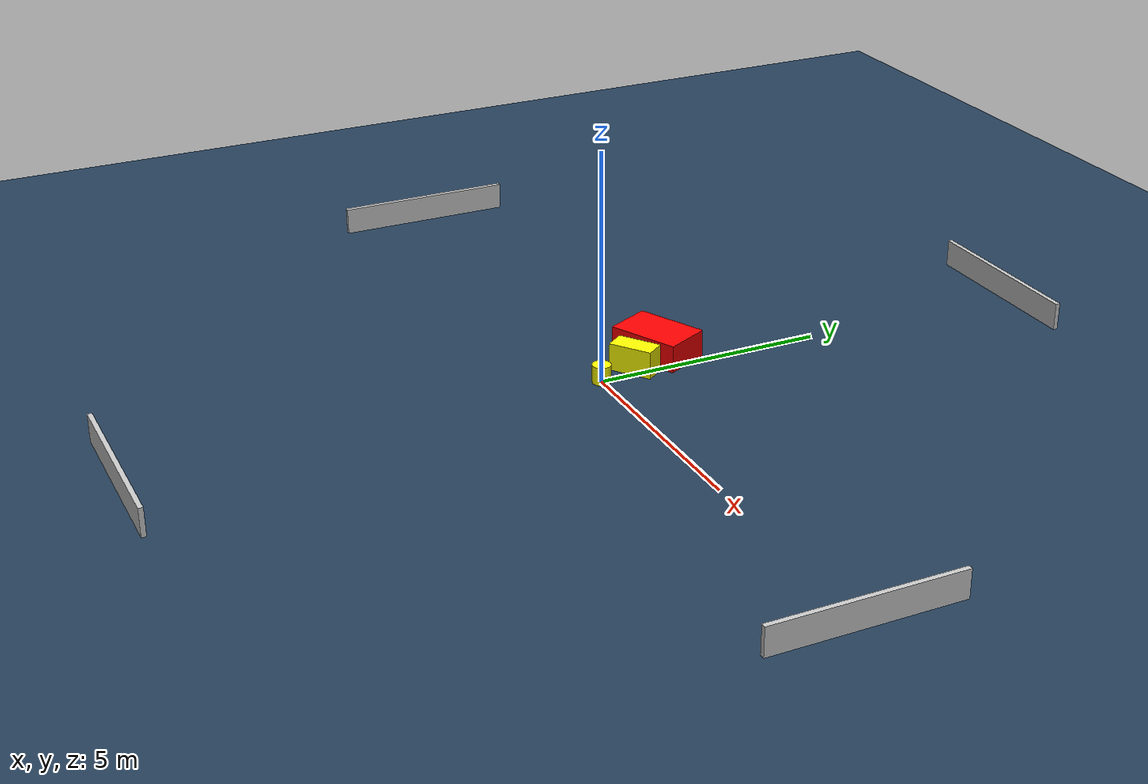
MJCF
<?xml version="1.0" ?>
<mujoco model="generated_environment">
  <option timestep="0.01" integrator="RK4" cone="elliptic"/>
  <default>
    <geom density="1"/>
  </default>
  <asset>
    <texture builtin="gradient" height="3072" name="skybox" rgb1="0.3 0.5 0.7" rgb2="0 0 0" type="skybox" width="512"/>
    <texture builtin="checker" height="300" name="groundplane" rgb1="0.2 0.3 0.4" rgb2="0.1 0.2 0.3" type="2d" width="300"/>
    <material name="groundplane" reflectance="0.2" texrepeat="5 5" texture="groundplane"/>
  </asset>
  <worldbody>
    <light dir="0 0 -1" directional="true" pos="0 0 1.5"/>
    <geom condim="3" friction="0.5 0.005 0.001" material="groundplane" name="floor" pos="0 0 0" size="0 0 0.05" type="plane"/>
    <body name="walls">
      <geom name="wall_1" condim="4" pos="-10.0 0.0 0.3" rgba="0.800000011920929 0.800000011920929 0.800000011920929 1.0" size="0.05 2.0 0.3" type="box"/>
      <geom name="wall_2" condim="4" pos="10.0 0.0 0.3" rgba="0.800000011920929 0.800000011920929 0.800000011920929 1.0" size="0.05 2.0 0.3" type="box"/>
      <geom name="wall_3" condim="4" pos="0.0 -10.0 0.3" rgba="0.800000011920929 0.800000011920929 0.800000011920929 1.0" size="2.0 0.05 0.3" type="box"/>
      <geom name="wall_4" condim="4" pos="0.0 10.0 0.3" rgba="0.800000011920929 0.800000011920929 0.800000011920929 1.0" size="2.0 0.05 0.3" type="box"/>
    </body>
    <body name="robot">
      <joint name="joint_x" type="slide" pos="0 0 0" axis="1 0 0"/>
      <joint name="joint_y" type="slide" pos="0 0 0" axis="0 1 0"/>
      <geom name="robot" type="cylinder" pos="0.0 0.0 0.2" size="0.2 0.2 0.0" mass="5.0" friction="1.0 0.005 0.0001" condim="4" rgba="1.0 1.0 0.0 1.0"/>
    </body>
    <body name="obstacle_1_movable">
      <geom name="obstacle_1_movable" condim="4" pos="-0.18773846876239225 0.8579813718240855 0.3" euler="0 0 305.71321522887365" friction="0.0 0.005 0.001" rgba="1.0 1.0 0.0 1.0" size="0.23012149977193214 0.47768408663727996 0.3" type="box" mass="0.1"/>
      <joint type="free"/>
    </body>
    <body name="obstacle_2_static">
      <geom name="obstacle_2_static" condim="4" pos="-0.6678618697630383 1.6288279709588542 0.3" euler="0 0 295.69665957063404" friction="0.0 0.005 0.001" rgba="1.0 0.0 0.0 1.0" size="0.5215218988382608 0.7980795329180992 0.3" type="box"/>
    </body>
  </worldbody>
  <actuator>
    <motor name="actuator_x" joint="joint_x" gear="1" ctrlrange="-1 1"/>
    <motor name="actuator_y" joint="joint_y" gear="1" ctrlrange="-1 1"/>
  </actuator>
</mujoco>
